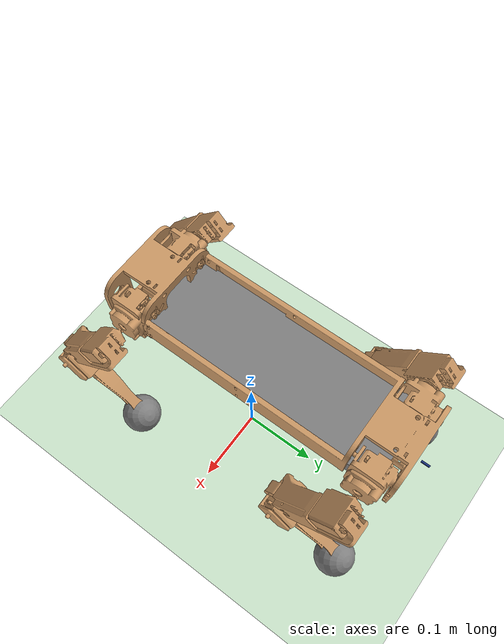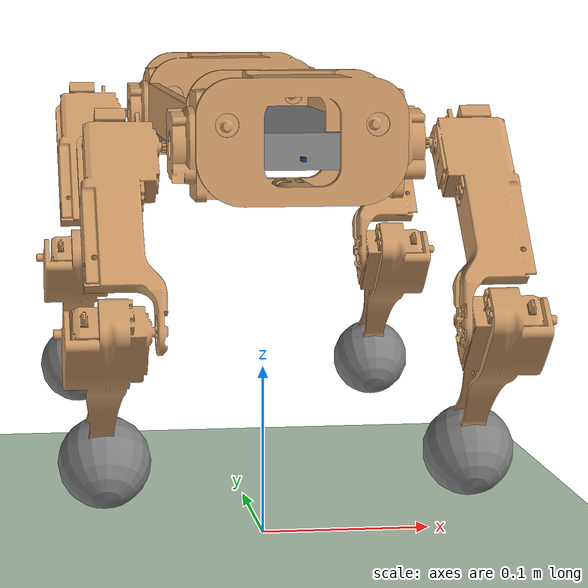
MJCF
<mujoco model="qrpfra">
  <compiler angle="degree" coordinate="local" inertiafromgeom="true" />
  <option integrator="RK4" timestep="0.02" gravity="0 0 -9.81" density="0.5"/>

  <default>
    <joint armature="1" damping="1" limited="true"/>
    <geom conaffinity="0" condim="3" density="5.0" friction="1 0.5 0.5" margin="0.01" rgba="0.8 0.6 0.4 1"/>
  </default>

  <asset>
    <texture builtin="gradient" height="100" rgb1="1 1 1" rgb2="0 0 0" type="skybox" width="100"/>
    <texture builtin="flat" height="1278" mark="cross" markrgb="1 1 1" name="texgeom" random="0.01" rgb1="0 0 0.4" rgb2="0.8 0.6 0.4" type="cube" width="127"/>
    <texture builtin="checker"  name="texplane" rgb1="0.02 0.02 0.12" rgb2="0.98 0.98 0.88" type="2d" width="1000" height="1000"/>
    <material name="MatPlane" reflectance="0.8" shininess="1" specular="1" texrepeat="60 60" texture="texplane"/>
    <material name="geom" texture="texgeom" texuniform="true"/>
    <mesh name="base_link" file="/Users/deniz/PycharmProjects/mujoco_reinforcement_research/QRPfRA_deneme/Assets/base_link.stl"/>
    <mesh name="front_Left_Hind_Limb" file="/Users/deniz/PycharmProjects/mujoco_reinforcement_research/QRPfRA_deneme/Assets/front_Left_Hind_Limb.stl"/>
    <mesh name="front_Left_MidLimb" file="/Users/deniz/PycharmProjects/mujoco_reinforcement_research/QRPfRA_deneme/Assets/front_Left_MidLimb.stl"/>
    <mesh name="front_Left_Wrist" file="/Users/deniz/PycharmProjects/mujoco_reinforcement_research/QRPfRA_deneme/Assets/front_Left_Wrist.stl"/>
    <mesh name="front_Right_Hind_Limb" file="/Users/deniz/PycharmProjects/mujoco_reinforcement_research/QRPfRA_deneme/Assets/front_Right_Hind_Limb.stl"/>
    <mesh name="front_Right_MidLimb" file="/Users/deniz/PycharmProjects/mujoco_reinforcement_research/QRPfRA_deneme/Assets/front_Right_MidLimb.stl"/>
    <mesh name="front_Right_Wrist" file="/Users/deniz/PycharmProjects/mujoco_reinforcement_research/QRPfRA_deneme/Assets/front_Right_Wrist.stl"/>
    <mesh name="rear_Left_Hind_Limb" file="/Users/deniz/PycharmProjects/mujoco_reinforcement_research/QRPfRA_deneme/Assets/rear_Left_Hind_Limb.stl"/>
    <mesh name="rear_Left_MidLimb" file="/Users/deniz/PycharmProjects/mujoco_reinforcement_research/QRPfRA_deneme/Assets/rear_Left_MidLimb.stl"/>
    <mesh name="rear_Left_Wrist" file="/Users/deniz/PycharmProjects/mujoco_reinforcement_research/QRPfRA_deneme/Assets/rear_Left_Wrist.stl"/>
    <mesh name="rear_Right_Hind_Limb" file="/Users/deniz/PycharmProjects/mujoco_reinforcement_research/QRPfRA_deneme/Assets/rear_Right_Hind_Limb.stl"/>
    <mesh name="rear_Right_MidLimb" file="/Users/deniz/PycharmProjects/mujoco_reinforcement_research/QRPfRA_deneme/Assets/rear_Right_MidLimb.stl"/>
    <mesh name="rear_Right_Wrist" file="/Users/deniz/PycharmProjects/mujoco_reinforcement_research/QRPfRA_deneme/Assets/rear_Right_Wrist.stl"/>
    <!--mesh name="scanned_stl" file="/Users/deniz/Desktop/deneme4.stl"/-->
  </asset>

  <worldbody>
    <light cutoff="100" diffuse="1 1 1" dir="-0 0 -1.3" directional="true" exponent="1" pos="0 0 1.3" specular=".1 .1 .1"/>
    <geom conaffinity="1" condim="3" material="MatPlane" name="floor" pos="0 0 0" rgba="0.8 0.9 0.8 1" size="40 40 40" type="plane"/>
    <!--geom type="mesh" mesh="scanned_stl" pos="0 0 0.3"/-->

    <body name="base_link" pos="0 0 0.07">
      <camera name="track" mode="trackcom" pos="0 -3 0.3" xyaxes="1 0 0 0 0 1"/>
      <geom type="mesh" mesh="base_link" mass="2"/>
      <joint armature="0" damping="0" limited="false" margin="0.01" name="root" pos="0 0 0" type="free"/>
      <site name="base_site" type="box" size="0.05 0.15 0.01"  pos="0.0 0.04 0.165" euler="180 0 0"/>
      <site name="base_site_front" type="box" size="0.001 0.001 0.005"  pos="0.0 0.22 0.165" rgba="0.1 0.2 0.5 1" euler="-90 0 0"/>
      <site name="base_site_rear" type="box" size="0.001 0.001 0.005"  pos="0.0 -0.16 0.165" rgba="0.1 0.2 0.5 1" euler="90 0 0"/>

      <body name="front_Left_Hind_Limb" pos="0 0 0">
        <joint axis="0 1 0" name="FL_hind_to_base" pos="-0.04 0.2 0.18" range="-45 45" type="hinge" damping="90"/>
        <geom type="mesh" mesh="front_Left_Hind_Limb" mass="0.8"/>
        <body name="front_Left_MidLimb" pos="0 0 0">
          <joint axis="1 0 0" name="FL_mid_to_base" pos="-0.08 0.18 0.17" range="-90 90" type="hinge" damping="90" ref="-45"/>
          <geom type="mesh" mesh="front_Left_MidLimb" mass="1"/>
          <body name="front_Left_Wrist" pos="0 0 0">
            <joint axis="1 0 0" name="FL_wrist_to_mid" pos="-0.08 0.113 0.083" range="-90 90" type="hinge" damping="90"/>
            <geom type="mesh" mesh="front_Left_Wrist" mass="1"/>
            <site name="FL_foot" type="sphere" size="0.025" pos="-0.1 0.198 0.0" euler="135 0 0"/>
          </body>
        </body>
      </body>

      <body name="front_Right_Hind_Limb" pos="0 0 0">
        <joint axis="0 1 0" name="FR_hind_to_base" pos="0.04 0.2 0.18" range="-45 45" type="hinge" damping="90"/>
        <geom type="mesh" mesh="front_Right_Hind_Limb" mass="0.8"/>
        <body name="front_Right_MidLimb" pos="0 0 0">
          <joint axis="-1 0 0" name="FR_mid_to_base" pos="0.08 0.18 0.17" range="-90 90" type="hinge" damping="90" />
          <geom type="mesh" mesh="front_Right_MidLimb" mass="1"/>
          <body name="front_Right_Wrist" pos="0 0 0">
            <joint axis="-1 0 0" name="FR_wrist_to_mid" pos="0.08 0.117 0.083" range="-90 90" type="hinge" damping="90"/>
            <geom type="mesh" mesh="front_Right_Wrist" mass="1"/>
            <site name="FR_foot" type="sphere" size="0.025" pos="0.1 0.2 0.0" euler="135 0 0"/>
          </body>
        </body>
      </body>

      <body name="rear_Left_Hind_Limb" pos="0 0 0">
        <joint axis="0 1 0" name="RL_hind_to_base" pos="-0.04 -0.1 0.18" range="-45 45" type="hinge" damping="90"/>
        <geom type="mesh" mesh="rear_Left_Hind_Limb" mass="0.8"/>
        <body name="rear_Left_MidLimb" pos="0 0 0">
          <joint axis="1 0 0" name="RL_mid_to_base" pos="-0.08 -0.13 0.17" range="-90 90" type="hinge" damping="90" />
          <geom type="mesh" mesh="rear_Left_MidLimb" mass="1"/>
          <body name="rear_Left_Wrist" pos="0 0 0">
            <joint axis="1 0 0" name="RL_wrist_to_mid" pos="-0.08 -0.195 0.083" range="-90 90" type="hinge" damping="90"/>
            <geom type="mesh" mesh="rear_Left_Wrist" mass="1"/>
            <site name="RL_foot" type="sphere" size="0.025" pos="-0.1 -0.112 0.0" euler="135 0 0"/>
          </body>
        </body>
      </body>

      <body name="rear_Right_Hind_Limb" pos="0 0 0">
        <joint axis="0 1 0" name="RR_hind_to_base" pos="0.04 -0.1 0.18" range="-45 45" type="hinge" damping="90"/>
        <geom type="mesh" mesh="rear_Right_Hind_Limb" mass="0.8"/>
        <body name="rear_Right_MidLimb" pos="0 0 0">
          <joint axis="-1 0 0" name="RR_mid_to_base" pos="0.08 -0.125 0.17" range="-90 90" type="hinge" damping="90" />
          <geom type="mesh" mesh="rear_Right_MidLimb" mass="1"/>
          <body name="rear_Right_Wrist" pos="0 0 0">
            <joint axis="-1 0 0" name="RR_wrist_to_mid" pos="0.08 -0.188 0.083" range="-90 90" type="hinge" damping="90"/>
            <geom type="mesh" mesh="rear_Right_Wrist" mass="1"/>
            <site name="RR_foot" type="sphere" size="0.025" pos="0.1 -0.105 0.0" euler="135 0 0"/>
          </body>
        </body>
      </body>

    </body>
  </worldbody>
  <actuator>
    <motor name="FL_hind_to_base_pos_motor" ctrllimited="true" ctrlrange="-50 50" joint="FL_hind_to_base" gear="20" />
    <motor name="FR_hind_to_base_pos_motor" ctrllimited="true" ctrlrange="-50 50" joint="FR_hind_to_base" gear="20" />
    <motor name="RL_hind_to_base_pos_motor" ctrllimited="true" ctrlrange="-50 50" joint="RL_hind_to_base"  gear="20" />
    <motor name="RR_wrist_to_mid_pos_motor" ctrllimited="true" ctrlrange="-50 50" joint="RR_wrist_to_mid"  gear="20" />

    <motor name="FL_mid_to_base_pos_motor" ctrllimited="true" ctrlrange="-50 50" joint="FL_mid_to_base"  gear="20" />
    <motor name="FL_wrist_to_mid_pos_motor" ctrllimited="true" ctrlrange="-50 50" joint="FL_wrist_to_mid"  gear="20" />

    <motor name="FR_mid_to_base_pos_motor" ctrllimited="true" ctrlrange="-50 50" joint="FR_mid_to_base"  gear="20" />
    <motor name="FR_wrist_to_mid_pos_motor" ctrllimited="true" ctrlrange="-50 50" joint="FR_wrist_to_mid"  gear="20" />

    <motor name="RL_mid_to_base_pos_motor" ctrllimited="true" ctrlrange="-50 50" joint="RL_mid_to_base"  gear="20" />
    <motor name="RL_wrist_to_mid_pos_motor" ctrllimited="true" ctrlrange="-50 50" joint="RL_wrist_to_mid"  gear="20" />

    <motor name="RR_hind_to_base_pos_motor" ctrllimited="true" ctrlrange="-50 50" joint="RR_hind_to_base"  gear="20" />
    <motor name="RR_mid_to_base_pos_motor" ctrllimited="true" ctrlrange="-50 50" joint="RR_mid_to_base"  gear="20" />
  </actuator>
  <sensor>
    <accelerometer name="base_acc" site="base_site"/>
    <gyro name="base_gyro" site="base_site"/>

    <accelerometer name="FL_foot_acc" site="FL_foot"/>
    <gyro name="FL_foot_gyro" site="FL_foot"/>
    <touch name="FL_foot_touch" site="FL_foot"/>

    <accelerometer name="FR_foot_acc" site="FR_foot"/>
    <gyro name="FR_foot_gyro" site="FR_foot"/>
    <touch name="FR_foot_touch" site="FL_foot"/>

    <accelerometer name="RL_foot_acc" site="RL_foot"/>
    <gyro name="RL_foot_gyro" site="RL_foot"/>
    <touch name="RL_foot_touch" site="FL_foot"/>

    <accelerometer name="RR_foot_acc" site="RR_foot"/>
    <gyro name="RR_foot_gyro" site="RR_foot"/>
    <touch name="RR_foot_touch" site="FL_foot"/>

    <rangefinder name="base_range_to_ground" site="base_site"/>
    <rangefinder name="base_range_to_front" site="base_site_front"/>
    <rangefinder name="base_range_to_rear" site="base_site_rear"/>

    <jointpos name="FL_hind_to_base_angle" joint="FL_hind_to_base"/>
    <jointpos name="FR_hind_to_base_angle" joint="FR_hind_to_base"/>
    <jointpos name="RL_hind_to_base_angle" joint="RL_hind_to_base"/>
    <jointpos name="RR_wrist_to_mid_angle" joint="RR_wrist_to_mid"/>

    <jointpos name="FL_mid_to_base_angle" joint="FL_mid_to_base"/>
    <jointpos name="FL_wrist_to_mid_angle" joint="FL_wrist_to_mid"/>

    <jointpos name="FR_mid_to_base_angle" joint="FR_mid_to_base"/>
    <jointpos name="FR_wrist_to_mid_angle" joint="FR_wrist_to_mid"/>

    <jointpos name="RL_mid_to_base_angle" joint="RL_mid_to_base"/>
    <jointpos name="RL_wrist_to_mid_angle" joint="RL_wrist_to_mid"/>

    <jointpos name="RR_hind_to_base_angle" joint="RR_hind_to_base"/>
    <jointpos name="RR_mid_to_base_angle" joint="RR_mid_to_base"/>
  </sensor>
</mujoco>
